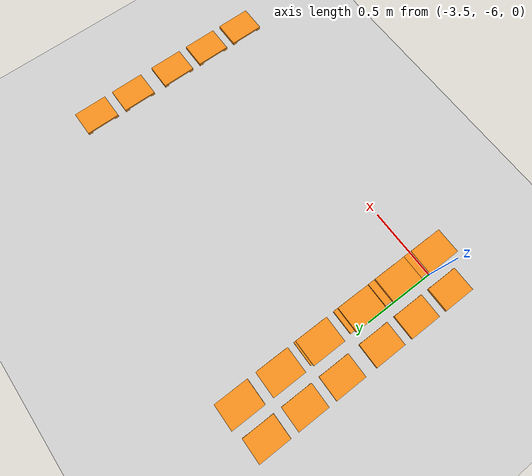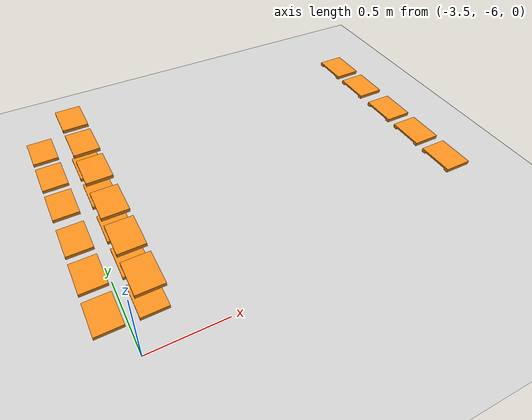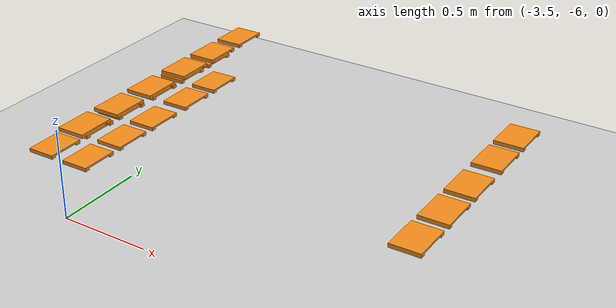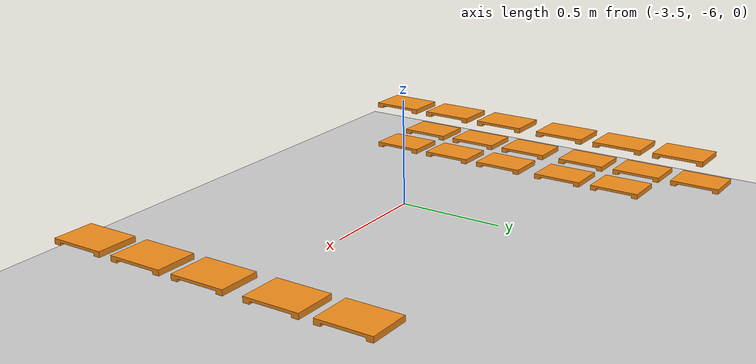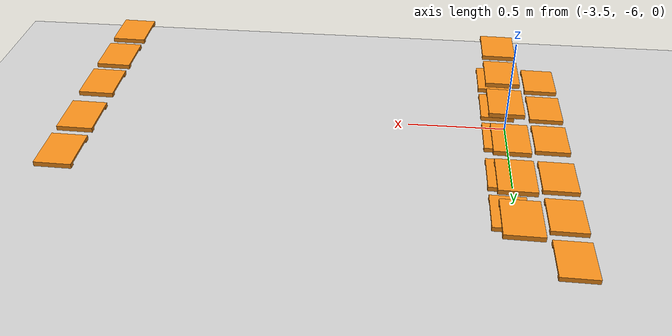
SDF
<sdf version="1.7">
 <world name="default">
  <model name="ground_plane">
   <static>1</static>
   <link name="link">
    <collision name="collision">
     <geometry><plane><normal>0 0 1</normal><size>100 100</size></plane></geometry>
     <surface>
      <contact><collide_bitmask>65535</collide_bitmask></contact>
      <friction><ode><mu>1</mu><mu2>1</mu2></ode></friction>
     </surface>
    </collision>
    <visual name="visual">
     <cast_shadows>0</cast_shadows>
     <geometry><plane><normal>0 0 1</normal><size>100 100</size></plane></geometry>
     <material>
      <script><uri>file://media/materials/scripts/gazebo.material</uri><name>Gazebo/Grey</name></script>
     </material>
    </visual>
   </link>
  </model>
  <model name="pallet_79">
   <pose>-3.61433 -4.887 0.330991 2.8e-05 -0.013038 -1e-05</pose>
   <link name="link">
    <inertial>
     <pose>0 0 0 0 -0 1.571</pose>
     <inertia>
      <ixx>0.00220983</ixx>
      <ixy>0</ixy>
      <ixz>0</ixz>
      <iyy>0.00128087</iyy>
      <iyz>0</iyz>
      <izz>0.00244903</izz>
     </inertia>
     <mass>0.01</mass>
    </inertial>
    <visual name="visual1">
     <cast_shadows>0</cast_shadows>
     <geometry><mesh><uri>model://pallet/meshes/pallet.stl</uri></mesh></geometry>
     <material>
      <script><uri>file://media/materials/scripts/gazebo.material</uri><name>Gazebo/Orange</name></script>
      <shader type="pixel"><normal_map>__default__</normal_map></shader>
      <emissive>0 0 0 1</emissive>
     </material>
     <pose>0 0 -0 0 -0 1.571</pose>
    </visual>
    <collision name="collision_0">
     <pose>0 0 0 0 -0 1.571</pose>
     <geometry><mesh><uri>model://pallet/meshes/pallet.stl</uri></mesh></geometry>
     <surface>
      <friction>
       <ode><mu>1</mu><mu2>1</mu2><fdir1>0 0 0</fdir1><slip1>0</slip1><slip2>0</slip2></ode>
       <torsional>
        <coefficient>1</coefficient>
        <patch_radius>0</patch_radius>
        <surface_radius>0</surface_radius>
        <use_patch_radius>1</use_patch_radius>
        <ode><slip>0</slip></ode>
       </torsional>
      </friction>
      <bounce><restitution_coefficient>0</restitution_coefficient><threshold>1e+06</threshold></bounce>
      <contact>
       <collide_without_contact>0</collide_without_contact>
       <collide_without_contact_bitmask>1</collide_without_contact_bitmask>
       <collide_bitmask>1</collide_bitmask>
       <ode>
        <soft_cfm>0</soft_cfm>
        <soft_erp>0.2</soft_erp>
        <kp>1e+13</kp>
        <kd>1</kd>
        <max_vel>0.01</max_vel>
        <min_depth>0</min_depth>
       </ode>
       <bullet>
        <split_impulse>1</split_impulse>
        <split_impulse_penetration_threshold>-0.01</split_impulse_penetration_threshold>
        <soft_cfm>0</soft_cfm>
        <soft_erp>0.2</soft_erp>
        <kp>1e+13</kp>
        <kd>1</kd>
       </bullet>
      </contact>
     </surface>
    </collision>
   </link>
   <static>0</static>
  </model>
  <model name="pallet_80">
   <pose>-3.61434 -4.637 0.330993 6e-06 -0.013043 4e-06</pose>
   <link name="link">
    <inertial>
     <pose>0 0 0 0 -0 1.571</pose>
     <inertia>
      <ixx>0.00220983</ixx>
      <ixy>0</ixy>
      <ixz>0</ixz>
      <iyy>0.00128087</iyy>
      <iyz>0</iyz>
      <izz>0.00244903</izz>
     </inertia>
     <mass>0.01</mass>
    </inertial>
    <visual name="visual1">
     <cast_shadows>0</cast_shadows>
     <geometry><mesh><uri>model://pallet/meshes/pallet.stl</uri></mesh></geometry>
     <material>
      <script><uri>file://media/materials/scripts/gazebo.material</uri><name>Gazebo/Orange</name></script>
      <shader type="pixel"><normal_map>__default__</normal_map></shader>
      <emissive>0 0 0 1</emissive>
     </material>
     <pose>0 0 -0 0 -0 1.571</pose>
    </visual>
    <collision name="collision_0">
     <pose>0 0 0 0 -0 1.571</pose>
     <geometry><mesh><uri>model://pallet/meshes/pallet.stl</uri></mesh></geometry>
     <surface>
      <friction>
       <ode><mu>1</mu><mu2>1</mu2><fdir1>0 0 0</fdir1><slip1>0</slip1><slip2>0</slip2></ode>
       <torsional>
        <coefficient>1</coefficient>
        <patch_radius>0</patch_radius>
        <surface_radius>0</surface_radius>
        <use_patch_radius>1</use_patch_radius>
        <ode><slip>0</slip></ode>
       </torsional>
      </friction>
      <bounce><restitution_coefficient>0</restitution_coefficient><threshold>1e+06</threshold></bounce>
      <contact>
       <collide_without_contact>0</collide_without_contact>
       <collide_without_contact_bitmask>1</collide_without_contact_bitmask>
       <collide_bitmask>1</collide_bitmask>
       <ode>
        <soft_cfm>0</soft_cfm>
        <soft_erp>0.2</soft_erp>
        <kp>1e+13</kp>
        <kd>1</kd>
        <max_vel>0.01</max_vel>
        <min_depth>0</min_depth>
       </ode>
       <bullet>
        <split_impulse>1</split_impulse>
        <split_impulse_penetration_threshold>-0.01</split_impulse_penetration_threshold>
        <soft_cfm>0</soft_cfm>
        <soft_erp>0.2</soft_erp>
        <kp>1e+13</kp>
        <kd>1</kd>
       </bullet>
      </contact>
     </surface>
    </collision>
   </link>
   <static>0</static>
  </model>
  <model name="pallet_81">
   <pose>-3.61433 -5.137 0.33099 2.5e-05 -0.013042 2e-06</pose>
   <link name="link">
    <inertial>
     <pose>0 0 0 0 -0 1.571</pose>
     <inertia>
      <ixx>0.00220983</ixx>
      <ixy>0</ixy>
      <ixz>0</ixz>
      <iyy>0.00128087</iyy>
      <iyz>0</iyz>
      <izz>0.00244903</izz>
     </inertia>
     <mass>0.01</mass>
    </inertial>
    <visual name="visual1">
     <cast_shadows>0</cast_shadows>
     <geometry><mesh><uri>model://pallet/meshes/pallet.stl</uri></mesh></geometry>
     <material>
      <script><uri>file://media/materials/scripts/gazebo.material</uri><name>Gazebo/Orange</name></script>
      <shader type="pixel"><normal_map>__default__</normal_map></shader>
      <emissive>0 0 0 1</emissive>
     </material>
     <pose>0 0 -0 0 -0 1.571</pose>
    </visual>
    <collision name="collision_0">
     <pose>0 0 0 0 -0 1.571</pose>
     <geometry><mesh><uri>model://pallet/meshes/pallet.stl</uri></mesh></geometry>
     <surface>
      <friction>
       <ode><mu>1</mu><mu2>1</mu2><fdir1>0 0 0</fdir1><slip1>0</slip1><slip2>0</slip2></ode>
       <torsional>
        <coefficient>1</coefficient>
        <patch_radius>0</patch_radius>
        <surface_radius>0</surface_radius>
        <use_patch_radius>1</use_patch_radius>
        <ode><slip>0</slip></ode>
       </torsional>
      </friction>
      <bounce><restitution_coefficient>0</restitution_coefficient><threshold>1e+06</threshold></bounce>
      <contact>
       <collide_without_contact>0</collide_without_contact>
       <collide_without_contact_bitmask>1</collide_without_contact_bitmask>
       <collide_bitmask>1</collide_bitmask>
       <ode>
        <soft_cfm>0</soft_cfm>
        <soft_erp>0.2</soft_erp>
        <kp>1e+13</kp>
        <kd>1</kd>
        <max_vel>0.01</max_vel>
        <min_depth>0</min_depth>
       </ode>
       <bullet>
        <split_impulse>1</split_impulse>
        <split_impulse_penetration_threshold>-0.01</split_impulse_penetration_threshold>
        <soft_cfm>0</soft_cfm>
        <soft_erp>0.2</soft_erp>
        <kp>1e+13</kp>
        <kd>1</kd>
       </bullet>
      </contact>
     </surface>
    </collision>
   </link>
   <static>0</static>
  </model>
  <model name="pallet_82">
   <pose>-3.61433 -5.6625 0.330989 1.7e-05 -0.013043 -7e-06</pose>
   <link name="link">
    <inertial>
     <pose>0 0 0 0 -0 1.571</pose>
     <inertia>
      <ixx>0.00220983</ixx>
      <ixy>0</ixy>
      <ixz>0</ixz>
      <iyy>0.00128087</iyy>
      <iyz>0</iyz>
      <izz>0.00244903</izz>
     </inertia>
     <mass>0.01</mass>
    </inertial>
    <visual name="visual1">
     <cast_shadows>0</cast_shadows>
     <geometry><mesh><uri>model://pallet/meshes/pallet.stl</uri></mesh></geometry>
     <material>
      <script><uri>file://media/materials/scripts/gazebo.material</uri><name>Gazebo/Orange</name></script>
      <shader type="pixel"><normal_map>__default__</normal_map></shader>
      <emissive>0 0 0 1</emissive>
     </material>
     <pose>0 0 -0 0 -0 1.571</pose>
    </visual>
    <collision name="collision_0">
     <pose>0 0 0 0 -0 1.571</pose>
     <geometry><mesh><uri>model://pallet/meshes/pallet.stl</uri></mesh></geometry>
     <surface>
      <friction>
       <ode><mu>1</mu><mu2>1</mu2><fdir1>0 0 0</fdir1><slip1>0</slip1><slip2>0</slip2></ode>
       <torsional>
        <coefficient>1</coefficient>
        <patch_radius>0</patch_radius>
        <surface_radius>0</surface_radius>
        <use_patch_radius>1</use_patch_radius>
        <ode><slip>0</slip></ode>
       </torsional>
      </friction>
      <bounce><restitution_coefficient>0</restitution_coefficient><threshold>1e+06</threshold></bounce>
      <contact>
       <collide_without_contact>0</collide_without_contact>
       <collide_without_contact_bitmask>1</collide_without_contact_bitmask>
       <collide_bitmask>1</collide_bitmask>
       <ode>
        <soft_cfm>0</soft_cfm>
        <soft_erp>0.2</soft_erp>
        <kp>1e+13</kp>
        <kd>1</kd>
        <max_vel>0.01</max_vel>
        <min_depth>0</min_depth>
       </ode>
       <bullet>
        <split_impulse>1</split_impulse>
        <split_impulse_penetration_threshold>-0.01</split_impulse_penetration_threshold>
        <soft_cfm>0</soft_cfm>
        <soft_erp>0.2</soft_erp>
        <kp>1e+13</kp>
        <kd>1</kd>
       </bullet>
      </contact>
     </surface>
    </collision>
   </link>
   <static>0</static>
  </model>
  <model name="pallet_83">
   <pose>-3.61433 -5.4125 0.330989 2e-05 -0.013036 3e-06</pose>
   <link name="link">
    <inertial>
     <pose>0 0 0 0 -0 1.571</pose>
     <inertia>
      <ixx>0.00220983</ixx>
      <ixy>0</ixy>
      <ixz>0</ixz>
      <iyy>0.00128087</iyy>
      <iyz>0</iyz>
      <izz>0.00244903</izz>
     </inertia>
     <mass>0.01</mass>
    </inertial>
    <visual name="visual1">
     <cast_shadows>0</cast_shadows>
     <geometry><mesh><uri>model://pallet/meshes/pallet.stl</uri></mesh></geometry>
     <material>
      <script><uri>file://media/materials/scripts/gazebo.material</uri><name>Gazebo/Orange</name></script>
      <shader type="pixel"><normal_map>__default__</normal_map></shader>
      <emissive>0 0 0 1</emissive>
     </material>
     <pose>0 0 -0 0 -0 1.571</pose>
    </visual>
    <collision name="collision_0">
     <pose>0 0 0 0 -0 1.571</pose>
     <geometry><mesh><uri>model://pallet/meshes/pallet.stl</uri></mesh></geometry>
     <surface>
      <friction>
       <ode><mu>1</mu><mu2>1</mu2><fdir1>0 0 0</fdir1><slip1>0</slip1><slip2>0</slip2></ode>
       <torsional>
        <coefficient>1</coefficient>
        <patch_radius>0</patch_radius>
        <surface_radius>0</surface_radius>
        <use_patch_radius>1</use_patch_radius>
        <ode><slip>0</slip></ode>
       </torsional>
      </friction>
      <bounce><restitution_coefficient>0</restitution_coefficient><threshold>1e+06</threshold></bounce>
      <contact>
       <collide_without_contact>0</collide_without_contact>
       <collide_without_contact_bitmask>1</collide_without_contact_bitmask>
       <collide_bitmask>1</collide_bitmask>
       <ode>
        <soft_cfm>0</soft_cfm>
        <soft_erp>0.2</soft_erp>
        <kp>1e+13</kp>
        <kd>1</kd>
        <max_vel>0.01</max_vel>
        <min_depth>0</min_depth>
       </ode>
       <bullet>
        <split_impulse>1</split_impulse>
        <split_impulse_penetration_threshold>-0.01</split_impulse_penetration_threshold>
        <soft_cfm>0</soft_cfm>
        <soft_erp>0.2</soft_erp>
        <kp>1e+13</kp>
        <kd>1</kd>
       </bullet>
      </contact>
     </surface>
    </collision>
   </link>
   <static>0</static>
  </model>
  <model name="pallet_84">
   <pose>-3.61432 -5.9125 0.330988 2.1e-05 -0.013043 7e-06</pose>
   <link name="link">
    <inertial>
     <pose>0 0 0 0 -0 1.571</pose>
     <inertia>
      <ixx>0.00220983</ixx>
      <ixy>0</ixy>
      <ixz>0</ixz>
      <iyy>0.00128087</iyy>
      <iyz>0</iyz>
      <izz>0.00244903</izz>
     </inertia>
     <mass>0.01</mass>
    </inertial>
    <visual name="visual1">
     <cast_shadows>0</cast_shadows>
     <geometry><mesh><uri>model://pallet/meshes/pallet.stl</uri></mesh></geometry>
     <material>
      <script><uri>file://media/materials/scripts/gazebo.material</uri><name>Gazebo/Orange</name></script>
      <shader type="pixel"><normal_map>__default__</normal_map></shader>
      <emissive>0 0 0 1</emissive>
     </material>
     <pose>0 0 -0 0 -0 1.571</pose>
    </visual>
    <collision name="collision_0">
     <pose>0 0 0 0 -0 1.571</pose>
     <geometry><mesh><uri>model://pallet/meshes/pallet.stl</uri></mesh></geometry>
     <surface>
      <friction>
       <ode><mu>1</mu><mu2>1</mu2><fdir1>0 0 0</fdir1><slip1>0</slip1><slip2>0</slip2></ode>
       <torsional>
        <coefficient>1</coefficient>
        <patch_radius>0</patch_radius>
        <surface_radius>0</surface_radius>
        <use_patch_radius>1</use_patch_radius>
        <ode><slip>0</slip></ode>
       </torsional>
      </friction>
      <bounce><restitution_coefficient>0</restitution_coefficient><threshold>1e+06</threshold></bounce>
      <contact>
       <collide_without_contact>0</collide_without_contact>
       <collide_without_contact_bitmask>1</collide_without_contact_bitmask>
       <collide_bitmask>1</collide_bitmask>
       <ode>
        <soft_cfm>0</soft_cfm>
        <soft_erp>0.2</soft_erp>
        <kp>1e+13</kp>
        <kd>1</kd>
        <max_vel>0.01</max_vel>
        <min_depth>0</min_depth>
       </ode>
       <bullet>
        <split_impulse>1</split_impulse>
        <split_impulse_penetration_threshold>-0.01</split_impulse_penetration_threshold>
        <soft_cfm>0</soft_cfm>
        <soft_erp>0.2</soft_erp>
        <kp>1e+13</kp>
        <kd>1</kd>
       </bullet>
      </contact>
     </surface>
    </collision>
   </link>
   <static>0</static>
  </model>
  <model name="pallet_103">
   <pose>-3.39641 -4.887 0.511018 3e-05 -0.012513 -1.8e-05</pose>
   <link name="link">
    <inertial>
     <pose>0 0 0 0 -0 1.571</pose>
     <inertia>
      <ixx>0.00220983</ixx>
      <ixy>0</ixy>
      <ixz>0</ixz>
      <iyy>0.00128087</iyy>
      <iyz>0</iyz>
      <izz>0.00244903</izz>
     </inertia>
     <mass>0.01</mass>
    </inertial>
    <visual name="visual1">
     <cast_shadows>0</cast_shadows>
     <geometry><mesh><uri>model://pallet/meshes/pallet.stl</uri></mesh></geometry>
     <material>
      <script><uri>file://media/materials/scripts/gazebo.material</uri><name>Gazebo/Orange</name></script>
      <shader type="pixel"><normal_map>__default__</normal_map></shader>
      <emissive>0 0 0 1</emissive>
     </material>
     <pose>0 0 -0 0 -0 1.571</pose>
    </visual>
    <collision name="collision_0">
     <pose>0 0 0 0 -0 1.571</pose>
     <geometry><mesh><uri>model://pallet/meshes/pallet.stl</uri></mesh></geometry>
     <surface>
      <friction>
       <ode><mu>1</mu><mu2>1</mu2><fdir1>0 0 0</fdir1><slip1>0</slip1><slip2>0</slip2></ode>
       <torsional>
        <coefficient>1</coefficient>
        <patch_radius>0</patch_radius>
        <surface_radius>0</surface_radius>
        <use_patch_radius>1</use_patch_radius>
        <ode><slip>0</slip></ode>
       </torsional>
      </friction>
      <bounce><restitution_coefficient>0</restitution_coefficient><threshold>1e+06</threshold></bounce>
      <contact>
       <collide_without_contact>0</collide_without_contact>
       <collide_without_contact_bitmask>1</collide_without_contact_bitmask>
       <collide_bitmask>1</collide_bitmask>
       <ode>
        <soft_cfm>0</soft_cfm>
        <soft_erp>0.2</soft_erp>
        <kp>1e+13</kp>
        <kd>1</kd>
        <max_vel>0.01</max_vel>
        <min_depth>0</min_depth>
       </ode>
       <bullet>
        <split_impulse>1</split_impulse>
        <split_impulse_penetration_threshold>-0.01</split_impulse_penetration_threshold>
        <soft_cfm>0</soft_cfm>
        <soft_erp>0.2</soft_erp>
        <kp>1e+13</kp>
        <kd>1</kd>
       </bullet>
      </contact>
     </surface>
    </collision>
   </link>
   <static>0</static>
  </model>
  <model name="pallet_104">
   <pose>-3.39641 -4.637 0.51102 3e-06 -0.012514 1.3e-05</pose>
   <link name="link">
    <inertial>
     <pose>0 0 0 0 -0 1.571</pose>
     <inertia>
      <ixx>0.00220983</ixx>
      <ixy>0</ixy>
      <ixz>0</ixz>
      <iyy>0.00128087</iyy>
      <iyz>0</iyz>
      <izz>0.00244903</izz>
     </inertia>
     <mass>0.01</mass>
    </inertial>
    <visual name="visual1">
     <cast_shadows>0</cast_shadows>
     <geometry><mesh><uri>model://pallet/meshes/pallet.stl</uri></mesh></geometry>
     <material>
      <script><uri>file://media/materials/scripts/gazebo.material</uri><name>Gazebo/Orange</name></script>
      <shader type="pixel"><normal_map>__default__</normal_map></shader>
      <emissive>0 0 0 1</emissive>
     </material>
     <pose>0 0 -0 0 -0 1.571</pose>
    </visual>
    <collision name="collision_0">
     <pose>0 0 0 0 -0 1.571</pose>
     <geometry><mesh><uri>model://pallet/meshes/pallet.stl</uri></mesh></geometry>
     <surface>
      <friction>
       <ode><mu>1</mu><mu2>1</mu2><fdir1>0 0 0</fdir1><slip1>0</slip1><slip2>0</slip2></ode>
       <torsional>
        <coefficient>1</coefficient>
        <patch_radius>0</patch_radius>
        <surface_radius>0</surface_radius>
        <use_patch_radius>1</use_patch_radius>
        <ode><slip>0</slip></ode>
       </torsional>
      </friction>
      <bounce><restitution_coefficient>0</restitution_coefficient><threshold>1e+06</threshold></bounce>
      <contact>
       <collide_without_contact>0</collide_without_contact>
       <collide_without_contact_bitmask>1</collide_without_contact_bitmask>
       <collide_bitmask>1</collide_bitmask>
       <ode>
        <soft_cfm>0</soft_cfm>
        <soft_erp>0.2</soft_erp>
        <kp>1e+13</kp>
        <kd>1</kd>
        <max_vel>0.01</max_vel>
        <min_depth>0</min_depth>
       </ode>
       <bullet>
        <split_impulse>1</split_impulse>
        <split_impulse_penetration_threshold>-0.01</split_impulse_penetration_threshold>
        <soft_cfm>0</soft_cfm>
        <soft_erp>0.2</soft_erp>
        <kp>1e+13</kp>
        <kd>1</kd>
       </bullet>
      </contact>
     </surface>
    </collision>
   </link>
   <static>0</static>
  </model>
  <model name="pallet_105">
   <pose>-3.39641 -5.137 0.511017 2.7e-05 -0.012513 1e-05</pose>
   <link name="link">
    <inertial>
     <pose>0 0 0 0 -0 1.571</pose>
     <inertia>
      <ixx>0.00220983</ixx>
      <ixy>0</ixy>
      <ixz>0</ixz>
      <iyy>0.00128087</iyy>
      <iyz>0</iyz>
      <izz>0.00244903</izz>
     </inertia>
     <mass>0.01</mass>
    </inertial>
    <visual name="visual1">
     <cast_shadows>0</cast_shadows>
     <geometry><mesh><uri>model://pallet/meshes/pallet.stl</uri></mesh></geometry>
     <material>
      <script><uri>file://media/materials/scripts/gazebo.material</uri><name>Gazebo/Orange</name></script>
      <shader type="pixel"><normal_map>__default__</normal_map></shader>
      <emissive>0 0 0 1</emissive>
     </material>
     <pose>0 0 -0 0 -0 1.571</pose>
    </visual>
    <collision name="collision_0">
     <pose>0 0 0 0 -0 1.571</pose>
     <geometry><mesh><uri>model://pallet/meshes/pallet.stl</uri></mesh></geometry>
     <surface>
      <friction>
       <ode><mu>1</mu><mu2>1</mu2><fdir1>0 0 0</fdir1><slip1>0</slip1><slip2>0</slip2></ode>
       <torsional>
        <coefficient>1</coefficient>
        <patch_radius>0</patch_radius>
        <surface_radius>0</surface_radius>
        <use_patch_radius>1</use_patch_radius>
        <ode><slip>0</slip></ode>
       </torsional>
      </friction>
      <bounce><restitution_coefficient>0</restitution_coefficient><threshold>1e+06</threshold></bounce>
      <contact>
       <collide_without_contact>0</collide_without_contact>
       <collide_without_contact_bitmask>1</collide_without_contact_bitmask>
       <collide_bitmask>1</collide_bitmask>
       <ode>
        <soft_cfm>0</soft_cfm>
        <soft_erp>0.2</soft_erp>
        <kp>1e+13</kp>
        <kd>1</kd>
        <max_vel>0.01</max_vel>
        <min_depth>0</min_depth>
       </ode>
       <bullet>
        <split_impulse>1</split_impulse>
        <split_impulse_penetration_threshold>-0.01</split_impulse_penetration_threshold>
        <soft_cfm>0</soft_cfm>
        <soft_erp>0.2</soft_erp>
        <kp>1e+13</kp>
        <kd>1</kd>
       </bullet>
      </contact>
     </surface>
    </collision>
   </link>
   <static>0</static>
  </model>
  <model name="pallet_106">
   <pose>-3.3964 -5.6625 0.511016 2.9e-05 -0.012512 -4e-06</pose>
   <link name="link">
    <inertial>
     <pose>0 0 0 0 -0 1.571</pose>
     <inertia>
      <ixx>0.00220983</ixx>
      <ixy>0</ixy>
      <ixz>0</ixz>
      <iyy>0.00128087</iyy>
      <iyz>0</iyz>
      <izz>0.00244903</izz>
     </inertia>
     <mass>0.01</mass>
    </inertial>
    <visual name="visual1">
     <cast_shadows>0</cast_shadows>
     <geometry><mesh><uri>model://pallet/meshes/pallet.stl</uri></mesh></geometry>
     <material>
      <script><uri>file://media/materials/scripts/gazebo.material</uri><name>Gazebo/Orange</name></script>
      <shader type="pixel"><normal_map>__default__</normal_map></shader>
      <emissive>0 0 0 1</emissive>
     </material>
     <pose>0 0 -0 0 -0 1.571</pose>
    </visual>
    <collision name="collision_0">
     <pose>0 0 0 0 -0 1.571</pose>
     <geometry><mesh><uri>model://pallet/meshes/pallet.stl</uri></mesh></geometry>
     <surface>
      <friction>
       <ode><mu>1</mu><mu2>1</mu2><fdir1>0 0 0</fdir1><slip1>0</slip1><slip2>0</slip2></ode>
       <torsional>
        <coefficient>1</coefficient>
        <patch_radius>0</patch_radius>
        <surface_radius>0</surface_radius>
        <use_patch_radius>1</use_patch_radius>
        <ode><slip>0</slip></ode>
       </torsional>
      </friction>
      <bounce><restitution_coefficient>0</restitution_coefficient><threshold>1e+06</threshold></bounce>
      <contact>
       <collide_without_contact>0</collide_without_contact>
       <collide_without_contact_bitmask>1</collide_without_contact_bitmask>
       <collide_bitmask>1</collide_bitmask>
       <ode>
        <soft_cfm>0</soft_cfm>
        <soft_erp>0.2</soft_erp>
        <kp>1e+13</kp>
        <kd>1</kd>
        <max_vel>0.01</max_vel>
        <min_depth>0</min_depth>
       </ode>
       <bullet>
        <split_impulse>1</split_impulse>
        <split_impulse_penetration_threshold>-0.01</split_impulse_penetration_threshold>
        <soft_cfm>0</soft_cfm>
        <soft_erp>0.2</soft_erp>
        <kp>1e+13</kp>
        <kd>1</kd>
       </bullet>
      </contact>
     </surface>
    </collision>
   </link>
   <static>0</static>
  </model>
  <model name="pallet_107">
   <pose>-3.3964 -5.4125 0.511018 1.1e-05 -0.012514 2.4e-05</pose>
   <link name="link">
    <inertial>
     <pose>0 0 0 0 -0 1.571</pose>
     <inertia>
      <ixx>0.00220983</ixx>
      <ixy>0</ixy>
      <ixz>0</ixz>
      <iyy>0.00128087</iyy>
      <iyz>0</iyz>
      <izz>0.00244903</izz>
     </inertia>
     <mass>0.01</mass>
    </inertial>
    <visual name="visual1">
     <cast_shadows>0</cast_shadows>
     <geometry><mesh><uri>model://pallet/meshes/pallet.stl</uri></mesh></geometry>
     <material>
      <script><uri>file://media/materials/scripts/gazebo.material</uri><name>Gazebo/Orange</name></script>
      <shader type="pixel"><normal_map>__default__</normal_map></shader>
      <emissive>0 0 0 1</emissive>
     </material>
     <pose>0 0 -0 0 -0 1.571</pose>
    </visual>
    <collision name="collision_0">
     <pose>0 0 0 0 -0 1.571</pose>
     <geometry><mesh><uri>model://pallet/meshes/pallet.stl</uri></mesh></geometry>
     <surface>
      <friction>
       <ode><mu>1</mu><mu2>1</mu2><fdir1>0 0 0</fdir1><slip1>0</slip1><slip2>0</slip2></ode>
       <torsional>
        <coefficient>1</coefficient>
        <patch_radius>0</patch_radius>
        <surface_radius>0</surface_radius>
        <use_patch_radius>1</use_patch_radius>
        <ode><slip>0</slip></ode>
       </torsional>
      </friction>
      <bounce><restitution_coefficient>0</restitution_coefficient><threshold>1e+06</threshold></bounce>
      <contact>
       <collide_without_contact>0</collide_without_contact>
       <collide_without_contact_bitmask>1</collide_without_contact_bitmask>
       <collide_bitmask>1</collide_bitmask>
       <ode>
        <soft_cfm>0</soft_cfm>
        <soft_erp>0.2</soft_erp>
        <kp>1e+13</kp>
        <kd>1</kd>
        <max_vel>0.01</max_vel>
        <min_depth>0</min_depth>
       </ode>
       <bullet>
        <split_impulse>1</split_impulse>
        <split_impulse_penetration_threshold>-0.01</split_impulse_penetration_threshold>
        <soft_cfm>0</soft_cfm>
        <soft_erp>0.2</soft_erp>
        <kp>1e+13</kp>
        <kd>1</kd>
       </bullet>
      </contact>
     </surface>
    </collision>
   </link>
   <static>0</static>
  </model>
  <model name="pallet_108">
   <pose>-3.3964 -5.9125 0.511016 2.4e-05 -0.012514 4e-06</pose>
   <link name="link">
    <inertial>
     <pose>0 0 0 0 -0 1.571</pose>
     <inertia>
      <ixx>0.00220983</ixx>
      <ixy>0</ixy>
      <ixz>0</ixz>
      <iyy>0.00128087</iyy>
      <iyz>0</iyz>
      <izz>0.00244903</izz>
     </inertia>
     <mass>0.01</mass>
    </inertial>
    <visual name="visual1">
     <cast_shadows>0</cast_shadows>
     <geometry><mesh><uri>model://pallet/meshes/pallet.stl</uri></mesh></geometry>
     <material>
      <script><uri>file://media/materials/scripts/gazebo.material</uri><name>Gazebo/Orange</name></script>
      <shader type="pixel"><normal_map>__default__</normal_map></shader>
      <emissive>0 0 0 1</emissive>
     </material>
     <pose>0 0 -0 0 -0 1.571</pose>
    </visual>
    <collision name="collision_0">
     <pose>0 0 0 0 -0 1.571</pose>
     <geometry><mesh><uri>model://pallet/meshes/pallet.stl</uri></mesh></geometry>
     <surface>
      <friction>
       <ode><mu>1</mu><mu2>1</mu2><fdir1>0 0 0</fdir1><slip1>0</slip1><slip2>0</slip2></ode>
       <torsional>
        <coefficient>1</coefficient>
        <patch_radius>0</patch_radius>
        <surface_radius>0</surface_radius>
        <use_patch_radius>1</use_patch_radius>
        <ode><slip>0</slip></ode>
       </torsional>
      </friction>
      <bounce><restitution_coefficient>0</restitution_coefficient><threshold>1e+06</threshold></bounce>
      <contact>
       <collide_without_contact>0</collide_without_contact>
       <collide_without_contact_bitmask>1</collide_without_contact_bitmask>
       <collide_bitmask>1</collide_bitmask>
       <ode>
        <soft_cfm>0</soft_cfm>
        <soft_erp>0.2</soft_erp>
        <kp>1e+13</kp>
        <kd>1</kd>
        <max_vel>0.01</max_vel>
        <min_depth>0</min_depth>
       </ode>
       <bullet>
        <split_impulse>1</split_impulse>
        <split_impulse_penetration_threshold>-0.01</split_impulse_penetration_threshold>
        <soft_cfm>0</soft_cfm>
        <soft_erp>0.2</soft_erp>
        <kp>1e+13</kp>
        <kd>1</kd>
       </bullet>
      </contact>
     </surface>
    </collision>
   </link>
   <static>0</static>
  </model>
  <model name="pallet_115">
   <pose>-3.39416 -4.887 0.331032 3.1e-05 -0.012514 1e-06</pose>
   <link name="link">
    <inertial>
     <pose>0 0 0 0 -0 1.571</pose>
     <inertia>
      <ixx>0.00220983</ixx>
      <ixy>0</ixy>
      <ixz>0</ixz>
      <iyy>0.00128087</iyy>
      <iyz>0</iyz>
      <izz>0.00244903</izz>
     </inertia>
     <mass>0.01</mass>
    </inertial>
    <visual name="visual1">
     <cast_shadows>0</cast_shadows>
     <geometry><mesh><uri>model://pallet/meshes/pallet.stl</uri></mesh></geometry>
     <material>
      <script><uri>file://media/materials/scripts/gazebo.material</uri><name>Gazebo/Orange</name></script>
      <shader type="pixel"><normal_map>__default__</normal_map></shader>
      <emissive>0 0 0 1</emissive>
     </material>
     <pose>0 0 -0 0 -0 1.571</pose>
    </visual>
    <collision name="collision_0">
     <pose>0 0 0 0 -0 1.571</pose>
     <geometry><mesh><uri>model://pallet/meshes/pallet.stl</uri></mesh></geometry>
     <surface>
      <friction>
       <ode><mu>1</mu><mu2>1</mu2><fdir1>0 0 0</fdir1><slip1>0</slip1><slip2>0</slip2></ode>
       <torsional>
        <coefficient>1</coefficient>
        <patch_radius>0</patch_radius>
        <surface_radius>0</surface_radius>
        <use_patch_radius>1</use_patch_radius>
        <ode><slip>0</slip></ode>
       </torsional>
      </friction>
      <bounce><restitution_coefficient>0</restitution_coefficient><threshold>1e+06</threshold></bounce>
      <contact>
       <collide_without_contact>0</collide_without_contact>
       <collide_without_contact_bitmask>1</collide_without_contact_bitmask>
       <collide_bitmask>1</collide_bitmask>
       <ode>
        <soft_cfm>0</soft_cfm>
        <soft_erp>0.2</soft_erp>
        <kp>1e+13</kp>
        <kd>1</kd>
        <max_vel>0.01</max_vel>
        <min_depth>0</min_depth>
       </ode>
       <bullet>
        <split_impulse>1</split_impulse>
        <split_impulse_penetration_threshold>-0.01</split_impulse_penetration_threshold>
        <soft_cfm>0</soft_cfm>
        <soft_erp>0.2</soft_erp>
        <kp>1e+13</kp>
        <kd>1</kd>
       </bullet>
      </contact>
     </surface>
    </collision>
   </link>
   <static>0</static>
  </model>
  <model name="pallet_117">
   <pose>-3.39415 -5.137 0.331031 3.1e-05 -0.012514 9e-06</pose>
   <link name="link">
    <inertial>
     <pose>0 0 0 0 -0 1.571</pose>
     <inertia>
      <ixx>0.00220983</ixx>
      <ixy>0</ixy>
      <ixz>0</ixz>
      <iyy>0.00128087</iyy>
      <iyz>0</iyz>
      <izz>0.00244903</izz>
     </inertia>
     <mass>0.01</mass>
    </inertial>
    <visual name="visual1">
     <cast_shadows>0</cast_shadows>
     <geometry><mesh><uri>model://pallet/meshes/pallet.stl</uri></mesh></geometry>
     <material>
      <script><uri>file://media/materials/scripts/gazebo.material</uri><name>Gazebo/Orange</name></script>
      <shader type="pixel"><normal_map>__default__</normal_map></shader>
      <emissive>0 0 0 1</emissive>
     </material>
     <pose>0 0 -0 0 -0 1.571</pose>
    </visual>
    <collision name="collision_0">
     <pose>0 0 0 0 -0 1.571</pose>
     <geometry><mesh><uri>model://pallet/meshes/pallet.stl</uri></mesh></geometry>
     <surface>
      <friction>
       <ode><mu>1</mu><mu2>1</mu2><fdir1>0 0 0</fdir1><slip1>0</slip1><slip2>0</slip2></ode>
       <torsional>
        <coefficient>1</coefficient>
        <patch_radius>0</patch_radius>
        <surface_radius>0</surface_radius>
        <use_patch_radius>1</use_patch_radius>
        <ode><slip>0</slip></ode>
       </torsional>
      </friction>
      <bounce><restitution_coefficient>0</restitution_coefficient><threshold>1e+06</threshold></bounce>
      <contact>
       <collide_without_contact>0</collide_without_contact>
       <collide_without_contact_bitmask>1</collide_without_contact_bitmask>
       <collide_bitmask>1</collide_bitmask>
       <ode>
        <soft_cfm>0</soft_cfm>
        <soft_erp>0.2</soft_erp>
        <kp>1e+13</kp>
        <kd>1</kd>
        <max_vel>0.01</max_vel>
        <min_depth>0</min_depth>
       </ode>
       <bullet>
        <split_impulse>1</split_impulse>
        <split_impulse_penetration_threshold>-0.01</split_impulse_penetration_threshold>
        <soft_cfm>0</soft_cfm>
        <soft_erp>0.2</soft_erp>
        <kp>1e+13</kp>
        <kd>1</kd>
       </bullet>
      </contact>
     </surface>
    </collision>
   </link>
   <static>0</static>
  </model>
  <model name="pallet_118">
   <pose>-3.39415 -5.6625 0.33103 2.5e-05 -0.012514 3e-06</pose>
   <link name="link">
    <inertial>
     <pose>0 0 0 0 -0 1.571</pose>
     <inertia>
      <ixx>0.00220983</ixx>
      <ixy>0</ixy>
      <ixz>0</ixz>
      <iyy>0.00128087</iyy>
      <iyz>0</iyz>
      <izz>0.00244903</izz>
     </inertia>
     <mass>0.01</mass>
    </inertial>
    <visual name="visual1">
     <cast_shadows>0</cast_shadows>
     <geometry><mesh><uri>model://pallet/meshes/pallet.stl</uri></mesh></geometry>
     <material>
      <script><uri>file://media/materials/scripts/gazebo.material</uri><name>Gazebo/Orange</name></script>
      <shader type="pixel"><normal_map>__default__</normal_map></shader>
      <emissive>0 0 0 1</emissive>
     </material>
     <pose>0 0 -0 0 -0 1.571</pose>
    </visual>
    <collision name="collision_0">
     <pose>0 0 0 0 -0 1.571</pose>
     <geometry><mesh><uri>model://pallet/meshes/pallet.stl</uri></mesh></geometry>
     <surface>
      <friction>
       <ode><mu>1</mu><mu2>1</mu2><fdir1>0 0 0</fdir1><slip1>0</slip1><slip2>0</slip2></ode>
       <torsional>
        <coefficient>1</coefficient>
        <patch_radius>0</patch_radius>
        <surface_radius>0</surface_radius>
        <use_patch_radius>1</use_patch_radius>
        <ode><slip>0</slip></ode>
       </torsional>
      </friction>
      <bounce><restitution_coefficient>0</restitution_coefficient><threshold>1e+06</threshold></bounce>
      <contact>
       <collide_without_contact>0</collide_without_contact>
       <collide_without_contact_bitmask>1</collide_without_contact_bitmask>
       <collide_bitmask>1</collide_bitmask>
       <ode>
        <soft_cfm>0</soft_cfm>
        <soft_erp>0.2</soft_erp>
        <kp>1e+13</kp>
        <kd>1</kd>
        <max_vel>0.01</max_vel>
        <min_depth>0</min_depth>
       </ode>
       <bullet>
        <split_impulse>1</split_impulse>
        <split_impulse_penetration_threshold>-0.01</split_impulse_penetration_threshold>
        <soft_cfm>0</soft_cfm>
        <soft_erp>0.2</soft_erp>
        <kp>1e+13</kp>
        <kd>1</kd>
       </bullet>
      </contact>
     </surface>
    </collision>
   </link>
   <static>0</static>
  </model>
  <model name="pallet_119">
   <pose>-3.39415 -5.4125 0.331031 1.8e-05 -0.012514 1.1e-05</pose>
   <link name="link">
    <inertial>
     <pose>0 0 0 0 -0 1.571</pose>
     <inertia>
      <ixx>0.00220983</ixx>
      <ixy>0</ixy>
      <ixz>0</ixz>
      <iyy>0.00128087</iyy>
      <iyz>0</iyz>
      <izz>0.00244903</izz>
     </inertia>
     <mass>0.01</mass>
    </inertial>
    <visual name="visual1">
     <cast_shadows>0</cast_shadows>
     <geometry><mesh><uri>model://pallet/meshes/pallet.stl</uri></mesh></geometry>
     <material>
      <script><uri>file://media/materials/scripts/gazebo.material</uri><name>Gazebo/Orange</name></script>
      <shader type="pixel"><normal_map>__default__</normal_map></shader>
      <emissive>0 0 0 1</emissive>
     </material>
     <pose>0 0 -0 0 -0 1.571</pose>
    </visual>
    <collision name="collision_0">
     <pose>0 0 0 0 -0 1.571</pose>
     <geometry><mesh><uri>model://pallet/meshes/pallet.stl</uri></mesh></geometry>
     <surface>
      <friction>
       <ode><mu>1</mu><mu2>1</mu2><fdir1>0 0 0</fdir1><slip1>0</slip1><slip2>0</slip2></ode>
       <torsional>
        <coefficient>1</coefficient>
        <patch_radius>0</patch_radius>
        <surface_radius>0</surface_radius>
        <use_patch_radius>1</use_patch_radius>
        <ode><slip>0</slip></ode>
       </torsional>
      </friction>
      <bounce><restitution_coefficient>0</restitution_coefficient><threshold>1e+06</threshold></bounce>
      <contact>
       <collide_without_contact>0</collide_without_contact>
       <collide_without_contact_bitmask>1</collide_without_contact_bitmask>
       <collide_bitmask>1</collide_bitmask>
       <ode>
        <soft_cfm>0</soft_cfm>
        <soft_erp>0.2</soft_erp>
        <kp>1e+13</kp>
        <kd>1</kd>
        <max_vel>0.01</max_vel>
        <min_depth>0</min_depth>
       </ode>
       <bullet>
        <split_impulse>1</split_impulse>
        <split_impulse_penetration_threshold>-0.01</split_impulse_penetration_threshold>
        <soft_cfm>0</soft_cfm>
        <soft_erp>0.2</soft_erp>
        <kp>1e+13</kp>
        <kd>1</kd>
       </bullet>
      </contact>
     </surface>
    </collision>
   </link>
   <static>0</static>
  </model>
  <model name="pallet_120">
   <pose>-3.39415 -5.9125 0.33103 2.4e-05 -0.012513 1.1e-05</pose>
   <link name="link">
    <inertial>
     <pose>0 0 0 0 -0 1.571</pose>
     <inertia>
      <ixx>0.00220983</ixx>
      <ixy>0</ixy>
      <ixz>0</ixz>
      <iyy>0.00128087</iyy>
      <iyz>0</iyz>
      <izz>0.00244903</izz>
     </inertia>
     <mass>0.01</mass>
    </inertial>
    <visual name="visual1">
     <cast_shadows>0</cast_shadows>
     <geometry><mesh><uri>model://pallet/meshes/pallet.stl</uri></mesh></geometry>
     <material>
      <script><uri>file://media/materials/scripts/gazebo.material</uri><name>Gazebo/Orange</name></script>
      <shader type="pixel"><normal_map>__default__</normal_map></shader>
      <emissive>0 0 0 1</emissive>
     </material>
     <pose>0 0 -0 0 -0 1.571</pose>
    </visual>
    <collision name="collision_0">
     <pose>0 0 0 0 -0 1.571</pose>
     <geometry><mesh><uri>model://pallet/meshes/pallet.stl</uri></mesh></geometry>
     <surface>
      <friction>
       <ode><mu>1</mu><mu2>1</mu2><fdir1>0 0 0</fdir1><slip1>0</slip1><slip2>0</slip2></ode>
       <torsional>
        <coefficient>1</coefficient>
        <patch_radius>0</patch_radius>
        <surface_radius>0</surface_radius>
        <use_patch_radius>1</use_patch_radius>
        <ode><slip>0</slip></ode>
       </torsional>
      </friction>
      <bounce><restitution_coefficient>0</restitution_coefficient><threshold>1e+06</threshold></bounce>
      <contact>
       <collide_without_contact>0</collide_without_contact>
       <collide_without_contact_bitmask>1</collide_without_contact_bitmask>
       <collide_bitmask>1</collide_bitmask>
       <ode>
        <soft_cfm>0</soft_cfm>
        <soft_erp>0.2</soft_erp>
        <kp>1e+13</kp>
        <kd>1</kd>
        <max_vel>0.01</max_vel>
        <min_depth>0</min_depth>
       </ode>
       <bullet>
        <split_impulse>1</split_impulse>
        <split_impulse_penetration_threshold>-0.01</split_impulse_penetration_threshold>
        <soft_cfm>0</soft_cfm>
        <soft_erp>0.2</soft_erp>
        <kp>1e+13</kp>
        <kd>1</kd>
       </bullet>
      </contact>
     </surface>
    </collision>
   </link>
   <static>0</static>
  </model>
  <model name="pallet_163">
   <pose>-1.61687 -4.887 0.510943 4e-05 -0.013419 -1.2e-05</pose>
   <link name="link">
    <inertial>
     <pose>0 0 0 0 -0 1.571</pose>
     <inertia>
      <ixx>0.00220983</ixx>
      <ixy>0</ixy>
      <ixz>0</ixz>
      <iyy>0.00128087</iyy>
      <iyz>0</iyz>
      <izz>0.00244903</izz>
     </inertia>
     <mass>0.01</mass>
    </inertial>
    <visual name="visual1">
     <cast_shadows>0</cast_shadows>
     <geometry><mesh><uri>model://pallet/meshes/pallet.stl</uri></mesh></geometry>
     <material>
      <script><uri>file://media/materials/scripts/gazebo.material</uri><name>Gazebo/Orange</name></script>
      <shader type="pixel"><normal_map>__default__</normal_map></shader>
      <emissive>0 0 0 1</emissive>
     </material>
     <pose>0 0 -0 0 -0 1.571</pose>
    </visual>
    <collision name="collision_0">
     <pose>0 0 0 0 -0 1.571</pose>
     <geometry><mesh><uri>model://pallet/meshes/pallet.stl</uri></mesh></geometry>
     <surface>
      <friction>
       <ode><mu>1</mu><mu2>1</mu2><fdir1>0 0 0</fdir1><slip1>0</slip1><slip2>0</slip2></ode>
       <torsional>
        <coefficient>1</coefficient>
        <patch_radius>0</patch_radius>
        <surface_radius>0</surface_radius>
        <use_patch_radius>1</use_patch_radius>
        <ode><slip>0</slip></ode>
       </torsional>
      </friction>
      <bounce><restitution_coefficient>0</restitution_coefficient><threshold>1e+06</threshold></bounce>
      <contact>
       <collide_without_contact>0</collide_without_contact>
       <collide_without_contact_bitmask>1</collide_without_contact_bitmask>
       <collide_bitmask>1</collide_bitmask>
       <ode>
        <soft_cfm>0</soft_cfm>
        <soft_erp>0.2</soft_erp>
        <kp>1e+13</kp>
        <kd>1</kd>
        <max_vel>0.01</max_vel>
        <min_depth>0</min_depth>
       </ode>
       <bullet>
        <split_impulse>1</split_impulse>
        <split_impulse_penetration_threshold>-0.01</split_impulse_penetration_threshold>
        <soft_cfm>0</soft_cfm>
        <soft_erp>0.2</soft_erp>
        <kp>1e+13</kp>
        <kd>1</kd>
       </bullet>
      </contact>
     </surface>
    </collision>
   </link>
   <static>0</static>
  </model>
  <model name="pallet_165">
   <pose>-1.61687 -5.137 0.510944 1.5e-05 -0.013419 0</pose>
   <link name="link">
    <inertial>
     <pose>0 0 0 0 -0 1.571</pose>
     <inertia>
      <ixx>0.00220983</ixx>
      <ixy>0</ixy>
      <ixz>0</ixz>
      <iyy>0.00128087</iyy>
      <iyz>0</iyz>
      <izz>0.00244903</izz>
     </inertia>
     <mass>0.01</mass>
    </inertial>
    <visual name="visual1">
     <cast_shadows>0</cast_shadows>
     <geometry><mesh><uri>model://pallet/meshes/pallet.stl</uri></mesh></geometry>
     <material>
      <script><uri>file://media/materials/scripts/gazebo.material</uri><name>Gazebo/Orange</name></script>
      <shader type="pixel"><normal_map>__default__</normal_map></shader>
      <emissive>0 0 0 1</emissive>
     </material>
     <pose>0 0 -0 0 -0 1.571</pose>
    </visual>
    <collision name="collision_0">
     <pose>0 0 0 0 -0 1.571</pose>
     <geometry><mesh><uri>model://pallet/meshes/pallet.stl</uri></mesh></geometry>
     <surface>
      <friction>
       <ode><mu>1</mu><mu2>1</mu2><fdir1>0 0 0</fdir1><slip1>0</slip1><slip2>0</slip2></ode>
       <torsional>
        <coefficient>1</coefficient>
        <patch_radius>0</patch_radius>
        <surface_radius>0</surface_radius>
        <use_patch_radius>1</use_patch_radius>
        <ode><slip>0</slip></ode>
       </torsional>
      </friction>
      <bounce><restitution_coefficient>0</restitution_coefficient><threshold>1e+06</threshold></bounce>
      <contact>
       <collide_without_contact>0</collide_without_contact>
       <collide_without_contact_bitmask>1</collide_without_contact_bitmask>
       <collide_bitmask>1</collide_bitmask>
       <ode>
        <soft_cfm>0</soft_cfm>
        <soft_erp>0.2</soft_erp>
        <kp>1e+13</kp>
        <kd>1</kd>
        <max_vel>0.01</max_vel>
        <min_depth>0</min_depth>
       </ode>
       <bullet>
        <split_impulse>1</split_impulse>
        <split_impulse_penetration_threshold>-0.01</split_impulse_penetration_threshold>
        <soft_cfm>0</soft_cfm>
        <soft_erp>0.2</soft_erp>
        <kp>1e+13</kp>
        <kd>1</kd>
       </bullet>
      </contact>
     </surface>
    </collision>
   </link>
   <static>0</static>
  </model>
  <model name="pallet_166">
   <pose>-1.61687 -5.6625 0.510941 3.4e-05 -0.01342 -2.2e-05</pose>
   <link name="link">
    <inertial>
     <pose>0 0 0 0 -0 1.571</pose>
     <inertia>
      <ixx>0.00220983</ixx>
      <ixy>0</ixy>
      <ixz>0</ixz>
      <iyy>0.00128087</iyy>
      <iyz>0</iyz>
      <izz>0.00244903</izz>
     </inertia>
     <mass>0.01</mass>
    </inertial>
    <visual name="visual1">
     <cast_shadows>0</cast_shadows>
     <geometry><mesh><uri>model://pallet/meshes/pallet.stl</uri></mesh></geometry>
     <material>
      <script><uri>file://media/materials/scripts/gazebo.material</uri><name>Gazebo/Orange</name></script>
      <shader type="pixel"><normal_map>__default__</normal_map></shader>
      <emissive>0 0 0 1</emissive>
     </material>
     <pose>0 0 -0 0 -0 1.571</pose>
    </visual>
    <collision name="collision_0">
     <pose>0 0 0 0 -0 1.571</pose>
     <geometry><mesh><uri>model://pallet/meshes/pallet.stl</uri></mesh></geometry>
     <surface>
      <friction>
       <ode><mu>1</mu><mu2>1</mu2><fdir1>0 0 0</fdir1><slip1>0</slip1><slip2>0</slip2></ode>
       <torsional>
        <coefficient>1</coefficient>
        <patch_radius>0</patch_radius>
        <surface_radius>0</surface_radius>
        <use_patch_radius>1</use_patch_radius>
        <ode><slip>0</slip></ode>
       </torsional>
      </friction>
      <bounce><restitution_coefficient>0</restitution_coefficient><threshold>1e+06</threshold></bounce>
      <contact>
       <collide_without_contact>0</collide_without_contact>
       <collide_without_contact_bitmask>1</collide_without_contact_bitmask>
       <collide_bitmask>1</collide_bitmask>
       <ode>
        <soft_cfm>0</soft_cfm>
        <soft_erp>0.2</soft_erp>
        <kp>1e+13</kp>
        <kd>1</kd>
        <max_vel>0.01</max_vel>
        <min_depth>0</min_depth>
       </ode>
       <bullet>
        <split_impulse>1</split_impulse>
        <split_impulse_penetration_threshold>-0.01</split_impulse_penetration_threshold>
        <soft_cfm>0</soft_cfm>
        <soft_erp>0.2</soft_erp>
        <kp>1e+13</kp>
        <kd>1</kd>
       </bullet>
      </contact>
     </surface>
    </collision>
   </link>
   <static>0</static>
  </model>
  <model name="pallet_167">
   <pose>-1.61687 -5.4125 0.510942 2.7e-05 -0.013419 1.8e-05</pose>
   <link name="link">
    <inertial>
     <pose>0 0 0 0 -0 1.571</pose>
     <inertia>
      <ixx>0.00220983</ixx>
      <ixy>0</ixy>
      <ixz>0</ixz>
      <iyy>0.00128087</iyy>
      <iyz>0</iyz>
      <izz>0.00244903</izz>
     </inertia>
     <mass>0.01</mass>
    </inertial>
    <visual name="visual1">
     <cast_shadows>0</cast_shadows>
     <geometry><mesh><uri>model://pallet/meshes/pallet.stl</uri></mesh></geometry>
     <material>
      <script><uri>file://media/materials/scripts/gazebo.material</uri><name>Gazebo/Orange</name></script>
      <shader type="pixel"><normal_map>__default__</normal_map></shader>
      <emissive>0 0 0 1</emissive>
     </material>
     <pose>0 0 -0 0 -0 1.571</pose>
    </visual>
    <collision name="collision_0">
     <pose>0 0 0 0 -0 1.571</pose>
     <geometry><mesh><uri>model://pallet/meshes/pallet.stl</uri></mesh></geometry>
     <surface>
      <friction>
       <ode><mu>1</mu><mu2>1</mu2><fdir1>0 0 0</fdir1><slip1>0</slip1><slip2>0</slip2></ode>
       <torsional>
        <coefficient>1</coefficient>
        <patch_radius>0</patch_radius>
        <surface_radius>0</surface_radius>
        <use_patch_radius>1</use_patch_radius>
        <ode><slip>0</slip></ode>
       </torsional>
      </friction>
      <bounce><restitution_coefficient>0</restitution_coefficient><threshold>1e+06</threshold></bounce>
      <contact>
       <collide_without_contact>0</collide_without_contact>
       <collide_without_contact_bitmask>1</collide_without_contact_bitmask>
       <collide_bitmask>1</collide_bitmask>
       <ode>
        <soft_cfm>0</soft_cfm>
        <soft_erp>0.2</soft_erp>
        <kp>1e+13</kp>
        <kd>1</kd>
        <max_vel>0.01</max_vel>
        <min_depth>0</min_depth>
       </ode>
       <bullet>
        <split_impulse>1</split_impulse>
        <split_impulse_penetration_threshold>-0.01</split_impulse_penetration_threshold>
        <soft_cfm>0</soft_cfm>
        <soft_erp>0.2</soft_erp>
        <kp>1e+13</kp>
        <kd>1</kd>
       </bullet>
      </contact>
     </surface>
    </collision>
   </link>
   <static>0</static>
  </model>
  <model name="pallet_168">
   <pose>-1.61686 -5.9125 0.510942 6e-06 -0.013424 1.5e-05</pose>
   <link name="link">
    <inertial>
     <pose>0 0 0 0 -0 1.571</pose>
     <inertia>
      <ixx>0.00220983</ixx>
      <ixy>0</ixy>
      <ixz>0</ixz>
      <iyy>0.00128087</iyy>
      <iyz>0</iyz>
      <izz>0.00244903</izz>
     </inertia>
     <mass>0.01</mass>
    </inertial>
    <visual name="visual1">
     <cast_shadows>0</cast_shadows>
     <geometry><mesh><uri>model://pallet/meshes/pallet.stl</uri></mesh></geometry>
     <material>
      <script><uri>file://media/materials/scripts/gazebo.material</uri><name>Gazebo/Orange</name></script>
      <shader type="pixel"><normal_map>__default__</normal_map></shader>
      <emissive>0 0 0 1</emissive>
     </material>
     <pose>0 0 -0 0 -0 1.571</pose>
    </visual>
    <collision name="collision_0">
     <pose>0 0 0 0 -0 1.571</pose>
     <geometry><mesh><uri>model://pallet/meshes/pallet.stl</uri></mesh></geometry>
     <surface>
      <friction>
       <ode><mu>1</mu><mu2>1</mu2><fdir1>0 0 0</fdir1><slip1>0</slip1><slip2>0</slip2></ode>
       <torsional>
        <coefficient>1</coefficient>
        <patch_radius>0</patch_radius>
        <surface_radius>0</surface_radius>
        <use_patch_radius>1</use_patch_radius>
        <ode><slip>0</slip></ode>
       </torsional>
      </friction>
      <bounce><restitution_coefficient>0</restitution_coefficient><threshold>1e+06</threshold></bounce>
      <contact>
       <collide_without_contact>0</collide_without_contact>
       <collide_without_contact_bitmask>1</collide_without_contact_bitmask>
       <collide_bitmask>1</collide_bitmask>
       <ode>
        <soft_cfm>0</soft_cfm>
        <soft_erp>0.2</soft_erp>
        <kp>1e+13</kp>
        <kd>1</kd>
        <max_vel>0.01</max_vel>
        <min_depth>0</min_depth>
       </ode>
       <bullet>
        <split_impulse>1</split_impulse>
        <split_impulse_penetration_threshold>-0.01</split_impulse_penetration_threshold>
        <soft_cfm>0</soft_cfm>
        <soft_erp>0.2</soft_erp>
        <kp>1e+13</kp>
        <kd>1</kd>
       </bullet>
      </contact>
     </surface>
    </collision>
   </link>
   <static>0</static>
  </model>
 </world>
</sdf>
